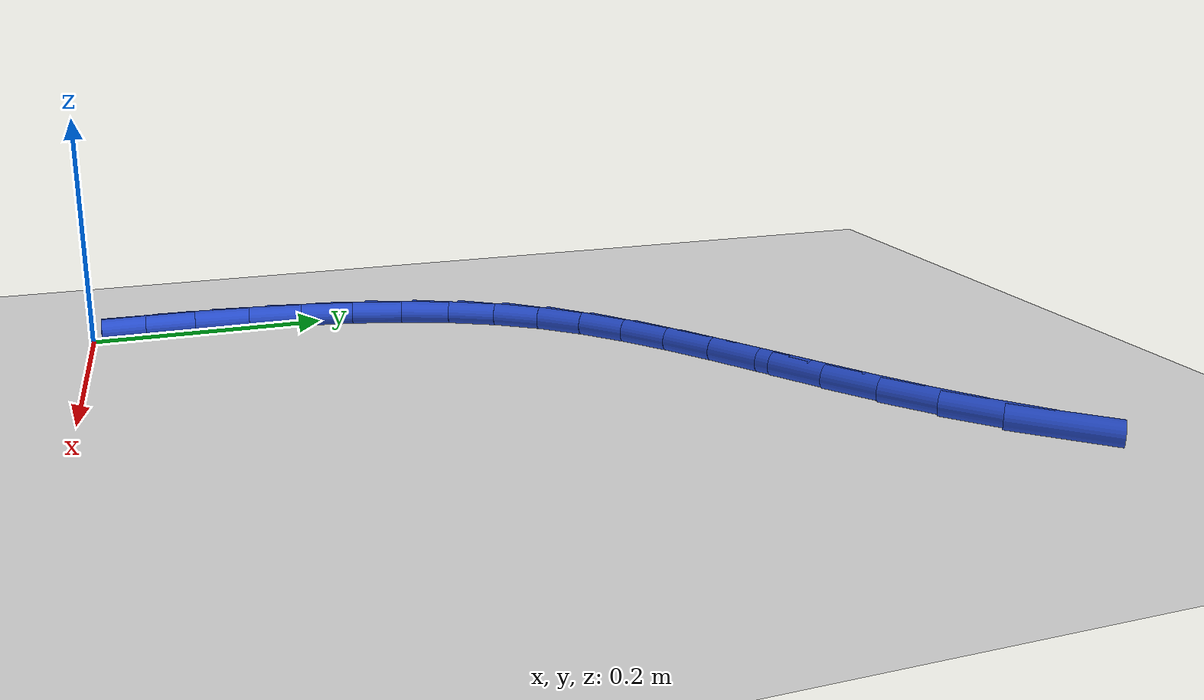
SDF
<sdf version="1.6">
 <world name="default">
  <model name="ground_plane">
   <static>1</static>
   <link name="link">
    <collision name="collision">
     <geometry><plane><normal>0 0 1</normal><size>100 100</size></plane></geometry>
     <surface><friction><ode><mu>100</mu><mu2>50</mu2></ode></friction></surface>
    </collision>
    <visual name="visual">
     <cast_shadows>0</cast_shadows>
     <geometry><plane><normal>0 0 1</normal><size>100 100</size></plane></geometry>
     <material>
      <script><uri>file://media/materials/scripts/gazebo.material</uri><name>Gazebo/WhiteGlow</name></script>
     </material>
    </visual>
   </link>
  </model>
  <model name="line">
   <link name="link_1">
    <pose>-0.0007946696506222375 0.047778617825266025 0.01 0 1.57 1.5540710812353986</pose>
    <collision name="collision">
     <geometry><cylinder><radius>0.01</radius><length>0.08</length></cylinder></geometry>
    </collision>
    <visual name="visual">
     <material>
      <script><name>Gazebo/Blue</name><uri>file://media/materials/scripts/gazebo.material</uri></script>
     </material>
     <geometry><cylinder><radius>0.01</radius><length>0.08</length></cylinder></geometry>
    </visual>
   </link>
   <link name="link_2">
    <pose>5.6341803319641176e-06 0.09562420566400855 0.01 0 1.57 1.511817530922678</pose>
    <collision name="collision">
     <geometry><cylinder><radius>0.01</radius><length>0.08</length></cylinder></geometry>
    </collision>
    <visual name="visual">
     <material>
      <script><name>Gazebo/Blue</name><uri>file://media/materials/scripts/gazebo.material</uri></script>
     </material>
     <geometry><cylinder><radius>0.01</radius><length>0.08</length></cylinder></geometry>
    </visual>
   </link>
   <link name="link_3">
    <pose>0.0028078790432107498 0.14308185321949368 0.01 0 1.57 1.4594667388106581</pose>
    <collision name="collision">
     <geometry><cylinder><radius>0.01</radius><length>0.08</length></cylinder></geometry>
    </collision>
    <visual name="visual">
     <material>
      <script><name>Gazebo/Blue</name><uri>file://media/materials/scripts/gazebo.material</uri></script>
     </material>
     <geometry><cylinder><radius>0.01</radius><length>0.08</length></cylinder></geometry>
    </visual>
   </link>
   <link name="link_4">
    <pose>0.008019032488362287 0.1896966501949873 0.01 0 1.57 1.3954842118591233</pose>
    <collision name="collision">
     <geometry><cylinder><radius>0.01</radius><length>0.08</length></cylinder></geometry>
    </collision>
    <visual name="visual">
     <material>
      <script><name>Gazebo/Blue</name><uri>file://media/materials/scripts/gazebo.material</uri></script>
     </material>
     <geometry><cylinder><radius>0.01</radius><length>0.08</length></cylinder></geometry>
    </visual>
   </link>
   <link name="link_5">
    <pose>0.016046062066134757 0.2350136862937556 0.01 0 1.57 1.318081584100216</pose>
    <collision name="collision">
     <geometry><cylinder><radius>0.01</radius><length>0.08</length></cylinder></geometry>
    </collision>
    <visual name="visual">
     <material>
      <script><name>Gazebo/Blue</name><uri>file://media/materials/scripts/gazebo.material</uri></script>
     </material>
     <geometry><cylinder><radius>0.01</radius><length>0.08</length></cylinder></geometry>
    </visual>
   </link>
   <link name="link_6">
    <pose>0.027295935326876346 0.27857805121906454 0.01 0 1.57 1.225428219969768</pose>
    <collision name="collision">
     <geometry><cylinder><radius>0.01</radius><length>0.08</length></cylinder></geometry>
    </collision>
    <visual name="visual">
     <material>
      <script><name>Gazebo/Blue</name><uri>file://media/materials/scripts/gazebo.material</uri></script>
     </material>
     <geometry><cylinder><radius>0.01</radius><length>0.08</length></cylinder></geometry>
    </visual>
   </link>
   <link name="link_7">
    <pose>0.04217561982093522 0.3199348346741801 0.01 0 1.57 1.1160926121666561</pose>
    <collision name="collision">
     <geometry><cylinder><radius>0.01</radius><length>0.08</length></cylinder></geometry>
    </collision>
    <visual name="visual">
     <material>
      <script><name>Gazebo/Blue</name><uri>file://media/materials/scripts/gazebo.material</uri></script>
     </material>
     <geometry><cylinder><radius>0.01</radius><length>0.08</length></cylinder></geometry>
    </visual>
   </link>
   <link name="link_8">
    <pose>0.061092083098659544 0.3586291263623683 0.01 0 1.57 0.9900174815071603</pose>
    <collision name="collision">
     <geometry><cylinder><radius>0.01</radius><length>0.08</length></cylinder></geometry>
    </collision>
    <visual name="visual">
     <material>
      <script><name>Gazebo/Blue</name><uri>file://media/materials/scripts/gazebo.material</uri></script>
     </material>
     <geometry><cylinder><radius>0.01</radius><length>0.08</length></cylinder></geometry>
    </visual>
   </link>
   <link name="link_9">
    <pose>0.08444497967276297 0.39421274776279663 0.01 0 1.57 0.8628762840987558</pose>
    <collision name="collision">
     <geometry><cylinder><radius>0.01</radius><length>0.08</length></cylinder></geometry>
    </collision>
    <visual name="visual">
     <material>
      <script><name>Gazebo/Blue</name><uri>file://media/materials/scripts/gazebo.material</uri></script>
     </material>
     <geometry><cylinder><radius>0.01</radius><length>0.08</length></cylinder></geometry>
    </visual>
   </link>
   <link name="link_10">
    <pose>0.11219859615573193 0.4266382839340592 0.01 0 1.57 0.7591932630883791</pose>
    <collision name="collision">
     <geometry><cylinder><radius>0.01</radius><length>0.08</length></cylinder></geometry>
    </collision>
    <visual name="visual">
     <material>
      <script><name>Gazebo/Blue</name><uri>file://media/materials/scripts/gazebo.material</uri></script>
     </material>
     <geometry><cylinder><radius>0.01</radius><length>0.08</length></cylinder></geometry>
    </visual>
   </link>
   <link name="link_11">
    <pose>0.14364435488279684 0.456477702980863 0.01 0 1.57 0.6814635301888626</pose>
    <collision name="collision">
     <geometry><cylinder><radius>0.01</radius><length>0.08</length></cylinder></geometry>
    </collision>
    <visual name="visual">
     <material>
      <script><name>Gazebo/Blue</name><uri>file://media/materials/scripts/gazebo.material</uri></script>
     </material>
     <geometry><cylinder><radius>0.01</radius><length>0.08</length></cylinder></geometry>
    </visual>
   </link>
   <link name="link_12">
    <pose>0.17801602539683592 0.4843560433868167 0.01 0 1.57 0.6283314219236602</pose>
    <collision name="collision">
     <geometry><cylinder><radius>0.01</radius><length>0.08</length></cylinder></geometry>
    </collision>
    <visual name="visual">
     <material>
      <script><name>Gazebo/Blue</name><uri>file://media/materials/scripts/gazebo.material</uri></script>
     </material>
     <geometry><cylinder><radius>0.01</radius><length>0.08</length></cylinder></geometry>
    </visual>
   </link>
   <link name="link_13">
    <pose>0.21454737724072706 0.5108983436355297 0.01 0 1.57 0.597941348197868</pose>
    <collision name="collision">
     <geometry><cylinder><radius>0.01</radius><length>0.08</length></cylinder></geometry>
    </collision>
    <visual name="visual">
     <material>
      <script><name>Gazebo/Blue</name><uri>file://media/materials/scripts/gazebo.material</uri></script>
     </material>
     <geometry><cylinder><radius>0.01</radius><length>0.08</length></cylinder></geometry>
    </visual>
   </link>
   <link name="link_14">
    <pose>0.2524721799573486 0.5367296422106106 0.01 0 1.57 0.5887920886620652</pose>
    <collision name="collision">
     <geometry><cylinder><radius>0.01</radius><length>0.08</length></cylinder></geometry>
    </collision>
    <visual name="visual">
     <material>
      <script><name>Gazebo/Blue</name><uri>file://media/materials/scripts/gazebo.material</uri></script>
     </material>
     <geometry><cylinder><radius>0.01</radius><length>0.08</length></cylinder></geometry>
    </visual>
   </link>
   <link name="link_15">
    <pose>0.29102420308957866 0.5624749775956689 0.01 0 1.57 0.6000825337693062</pose>
    <collision name="collision">
     <geometry><cylinder><radius>0.01</radius><length>0.08</length></cylinder></geometry>
    </collision>
    <visual name="visual">
     <material>
      <script><name>Gazebo/Blue</name><uri>file://media/materials/scripts/gazebo.material</uri></script>
     </material>
     <geometry><cylinder><radius>0.01</radius><length>0.08</length></cylinder></geometry>
    </visual>
   </link>
   <link name="link_16">
    <pose>0.3294372161802952 0.5887593882743134 0.01 0 1.57 0.631756837964478</pose>
    <collision name="collision">
     <geometry><cylinder><radius>0.01</radius><length>0.08</length></cylinder></geometry>
    </collision>
    <visual name="visual">
     <material>
      <script><name>Gazebo/Blue</name><uri>file://media/materials/scripts/gazebo.material</uri></script>
     </material>
     <geometry><cylinder><radius>0.01</radius><length>0.08</length></cylinder></geometry>
    </visual>
   </link>
   <link name="link_17">
    <pose>0.36694498877237663 0.6162079127301532 0.01 0 1.57 0.6843416865430514</pose>
    <collision name="collision">
     <geometry><cylinder><radius>0.01</radius><length>0.08</length></cylinder></geometry>
    </collision>
    <visual name="visual">
     <material>
      <script><name>Gazebo/Blue</name><uri>file://media/materials/scripts/gazebo.material</uri></script>
     </material>
     <geometry><cylinder><radius>0.01</radius><length>0.08</length></cylinder></geometry>
    </visual>
   </link>
   <link name="link_18">
    <pose>0.4027812904087007 0.6454455894467973 0.01 0 1.57 0.758552651109735</pose>
    <collision name="collision">
     <geometry><cylinder><radius>0.01</radius><length>0.08</length></cylinder></geometry>
    </collision>
    <visual name="visual">
     <material>
      <script><name>Gazebo/Blue</name><uri>file://media/materials/scripts/gazebo.material</uri></script>
     </material>
     <geometry><cylinder><radius>0.01</radius><length>0.08</length></cylinder></geometry>
    </visual>
   </link>
   <link name="link_19">
    <pose>0.4361798906321459 0.6770974569078549 0.01 0 1.57 0.8545851642665314</pose>
    <collision name="collision">
     <geometry><cylinder><radius>0.01</radius><length>0.08</length></cylinder></geometry>
    </collision>
    <visual name="visual">
     <material>
      <script><name>Gazebo/Blue</name><uri>file://media/materials/scripts/gazebo.material</uri></script>
     </material>
     <geometry><cylinder><radius>0.01</radius><length>0.08</length></cylinder></geometry>
    </visual>
   </link>
   <link name="link_161">
    <pose>-0.0008915332123132676 0.04783884233717401 0.01 0 1.57 -1.5521623051858808</pose>
    <collision name="collision">
     <geometry><cylinder><radius>0.01</radius><length>0.08</length></cylinder></geometry>
    </collision>
    <visual name="visual">
     <material>
      <script><name>Gazebo/Blue</name><uri>file://media/materials/scripts/gazebo.material</uri></script>
     </material>
     <geometry><cylinder><radius>0.01</radius><length>0.08</length></cylinder></geometry>
    </visual>
   </link>
  </model>
 </world>
</sdf>
